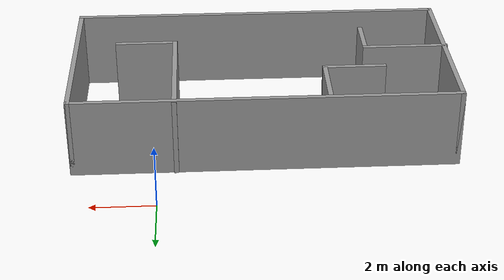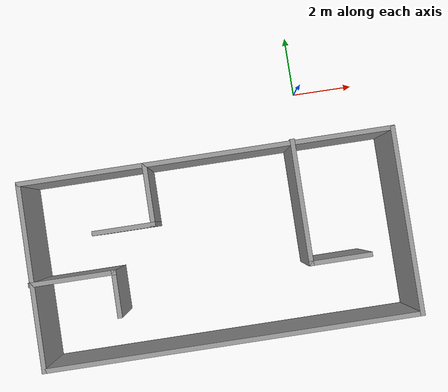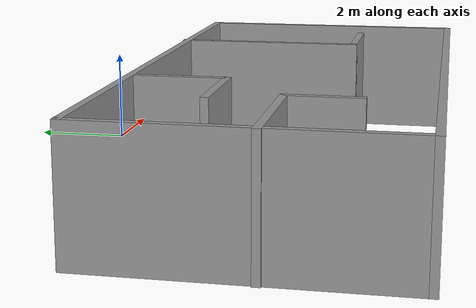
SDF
<?xml version='1.0'?>
<sdf version='1.7'>
  <model name='room'>
    <pose>-3.345 -3.8875 0 0 -0 0</pose>
    <link name='Wall_0'>
      <collision name='Wall_0_Collision'>
        <geometry>
          <box>
            <size>12 0.15 2.5</size>
          </box>
        </geometry>
        <pose>0 0 1.25 0 -0 0</pose>
      </collision>
      <visual name='Wall_0_Visual'>
        <pose>0 0 1.25 0 -0 0</pose>
        <geometry>
          <box>
            <size>12 0.15 2.5</size>
          </box>
        </geometry>
        <material>
          <script>
            <uri>file://media/materials/scripts/gazebo.material</uri>
            <name>Gazebo/Grey</name>
          </script>
          <ambient>1 1 1 1</ambient>
        </material>
        <meta>
          <layer>0</layer>
        </meta>
      </visual>
      <pose>0.02 2.0375 0 0 -0 0</pose>
    </link>
    <link name='Wall_1'>
      <collision name='Wall_1_Collision'>
        <geometry>
          <box>
            <size>6 0.15 2.5</size>
          </box>
        </geometry>
        <pose>0 0 1.25 0 -0 0</pose>
      </collision>
      <visual name='Wall_1_Visual'>
        <pose>0 0 1.25 0 -0 0</pose>
        <geometry>
          <box>
            <size>6 0.15 2.5</size>
          </box>
        </geometry>
        <material>
          <script>
            <uri>file://media/materials/scripts/gazebo.material</uri>
            <name>Gazebo/Grey</name>
          </script>
          <ambient>1 1 1 1</ambient>
        </material>
        <meta>
          <layer>0</layer>
        </meta>
      </visual>
      <pose>5.945 -0.8875 0 0 -0 -1.5708</pose>
    </link>
    <link name='Wall_11'>
      <collision name='Wall_11_Collision'>
        <geometry>
          <box>
            <size>4 0.15 2.5</size>
          </box>
        </geometry>
        <pose>0 0 1.25 0 -0 0</pose>
      </collision>
      <visual name='Wall_11_Visual'>
        <pose>0 0 1.25 0 -0 0</pose>
        <geometry>
          <box>
            <size>4 0.15 2.5</size>
          </box>
        </geometry>
        <material>
          <script>
            <uri>file://media/materials/scripts/gazebo.material</uri>
            <name>Gazebo/Grey</name>
          </script>
          <ambient>1 1 1 1</ambient>
        </material>
        <meta>
          <layer>0</layer>
        </meta>
      </visual>
      <pose>2.775 0.1525 0 0 -0 -1.5708</pose>
    </link>
    <link name='Wall_12'>
      <collision name='Wall_12_Collision'>
        <geometry>
          <box>
            <size>2 0.15 2.5</size>
          </box>
        </geometry>
        <pose>0 0 1.25 0 -0 0</pose>
      </collision>
      <visual name='Wall_12_Visual'>
        <pose>0 0 1.25 0 -0 0</pose>
        <geometry>
          <box>
            <size>2 0.15 2.5</size>
          </box>
        </geometry>
        <material>
          <script>
            <uri>file://media/materials/scripts/gazebo.material</uri>
            <name>Gazebo/Grey</name>
          </script>
          <ambient>1 1 1 1</ambient>
        </material>
        <meta>
          <layer>0</layer>
        </meta>
      </visual>
      <pose>3.7 -1.7725 0 0 -0 0</pose>
    </link>
    <link name='Wall_2'>
      <collision name='Wall_2_Collision'>
        <geometry>
          <box>
            <size>12 0.15 2.5</size>
          </box>
        </geometry>
        <pose>0 0 1.25 0 -0 0</pose>
      </collision>
      <visual name='Wall_2_Visual'>
        <pose>0 0 1.25 0 -0 0</pose>
        <geometry>
          <box>
            <size>12 0.15 2.5</size>
          </box>
        </geometry>
        <material>
          <script>
            <uri>file://media/materials/scripts/gazebo.material</uri>
            <name>Gazebo/Grey</name>
          </script>
          <ambient>1 1 1 1</ambient>
        </material>
        <meta>
          <layer>0</layer>
        </meta>
      </visual>
      <pose>0.02 -3.8125 0 0 -0 3.14159</pose>
    </link>
    <link name='Wall_3'>
      <collision name='Wall_3_Collision'>
        <geometry>
          <box>
            <size>6 0.15 2.5</size>
          </box>
        </geometry>
        <pose>0 0 1.25 0 -0 0</pose>
      </collision>
      <visual name='Wall_3_Visual'>
        <pose>0 0 1.25 0 -0 0</pose>
        <geometry>
          <box>
            <size>6 0.15 2.5</size>
          </box>
        </geometry>
        <material>
          <script>
            <uri>file://media/materials/scripts/gazebo.material</uri>
            <name>Gazebo/Grey</name>
          </script>
          <ambient>1 1 1 1</ambient>
        </material>
        <meta>
          <layer>0</layer>
        </meta>
      </visual>
      <pose>-5.905 -0.8875 0 0 -0 1.5708</pose>
    </link>
    <link name='Wall_5'>
      <collision name='Wall_5_Collision'>
        <geometry>
          <box>
            <size>2 0.15 2.5</size>
          </box>
        </geometry>
        <pose>0 0 1.25 0 -0 0</pose>
      </collision>
      <visual name='Wall_5_Visual'>
        <pose>0 0 1.25 0 -0 0</pose>
        <geometry>
          <box>
            <size>2 0.15 2.5</size>
          </box>
        </geometry>
        <material>
          <script>
            <uri>file://media/materials/scripts/gazebo.material</uri>
            <name>Gazebo/Grey</name>
          </script>
          <ambient>1 1 1 1</ambient>
        </material>
        <meta>
          <layer>0</layer>
        </meta>
      </visual>
      <pose>-1.915 1.0925 0 0 -0 -1.5708</pose>
    </link>
    <link name='Wall_6'>
      <collision name='Wall_6_Collision'>
        <geometry>
          <box>
            <size>2 0.15 2.5</size>
          </box>
        </geometry>
        <pose>0 0 1.25 0 -0 0</pose>
      </collision>
      <visual name='Wall_6_Visual'>
        <pose>0 0 1.25 0 -0 0</pose>
        <geometry>
          <box>
            <size>2 0.15 2.5</size>
          </box>
        </geometry>
        <material>
          <script>
            <uri>file://media/materials/scripts/gazebo.material</uri>
            <name>Gazebo/Grey</name>
          </script>
          <ambient>1 1 1 1</ambient>
        </material>
        <meta>
          <layer>0</layer>
        </meta>
      </visual>
      <pose>-2.84 0.1675 0 0 -0 3.14159</pose>
    </link>
    <link name='Wall_8'>
      <collision name='Wall_8_Collision'>
        <geometry>
          <box>
            <size>2.75 0.15 2.5</size>
          </box>
        </geometry>
        <pose>0 0 1.25 0 -0 0</pose>
      </collision>
      <visual name='Wall_8_Visual'>
        <pose>0 0 1.25 0 -0 0</pose>
        <geometry>
          <box>
            <size>2.75 0.15 2.5</size>
          </box>
        </geometry>
        <material>
          <script>
            <uri>file://media/materials/scripts/gazebo.material</uri>
            <name>Gazebo/Grey</name>
          </script>
          <ambient>1 1 1 1</ambient>
        </material>
        <meta>
          <layer>0</layer>
        </meta>
      </visual>
      <pose>-4.645 -1.1225 0 0 -0 0</pose>
    </link>
    <link name='Wall_9'>
      <collision name='Wall_9_Collision'>
        <geometry>
          <box>
            <size>1.5 0.15 2.5</size>
          </box>
        </geometry>
        <pose>0 0 1.25 0 -0 0</pose>
      </collision>
      <visual name='Wall_9_Visual'>
        <pose>0 0 1.25 0 -0 0</pose>
        <geometry>
          <box>
            <size>1.5 0.15 2.5</size>
          </box>
        </geometry>
        <material>
          <script>
            <uri>file://media/materials/scripts/gazebo.material</uri>
            <name>Gazebo/Grey</name>
          </script>
          <ambient>1 1 1 1</ambient>
        </material>
        <meta>
          <layer>0</layer>
        </meta>
      </visual>
      <pose>-3.345 -1.7975 0 0 -0 -1.5708</pose>
    </link>
    <static>1</static>
  </model>
</sdf>
